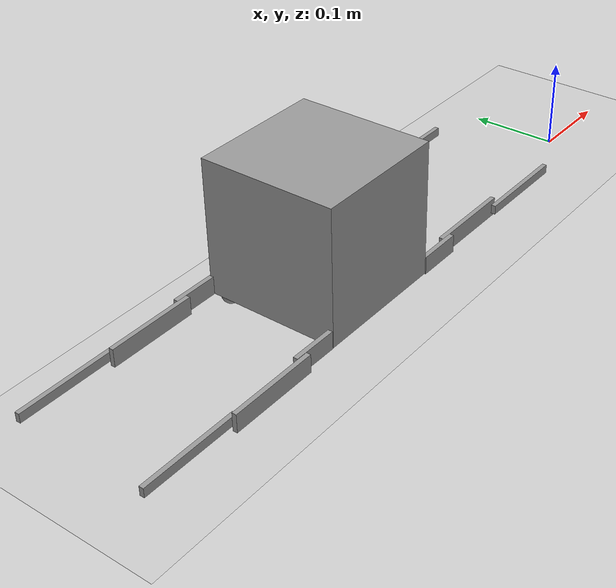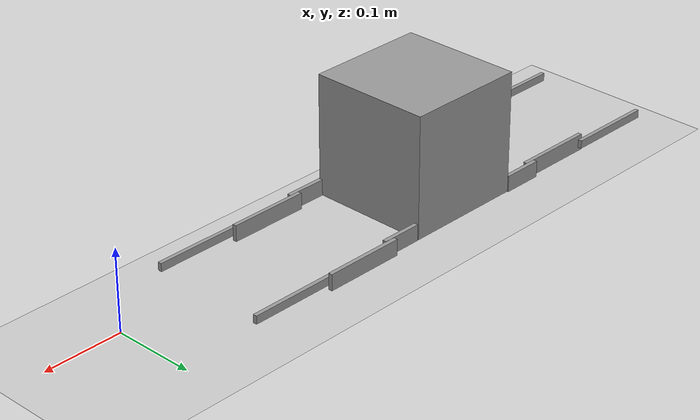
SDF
<?xml version="1.0" ?>
<sdf version="1.5">
  <world name="default">
    <!-- Ground -->
    <include>
      <uri>model://usr/share/gazebo-9/models/ground_plane</uri>
    </include>
    <!-- crawler -->
    <include>
      <uri>model:/model_editor_models/models/krabbler_v5</uri>
      <pose>0 0 0 0 0 0</pose>
    </include>
    <!-- A global light source -->
    <include>
      <uri>model://usr/share/gazebo-9/models/sun</uri>
    </include>
  </world>
</sdf>

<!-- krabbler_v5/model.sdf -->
<sdf version='1.6'>
  <model name='krabbler_v5'>
    <link name='link_0'>
      <inertial>
        <mass>0.8</mass>
        <inertia>
          <ixx>0.003</ixx>
          <ixy>0</ixy>
          <ixz>0</ixz>
          <iyy>0.003</iyy>
          <iyz>0</iyz>
          <izz>0.003</izz>
        </inertia>
        <pose frame=''>0 0 0 0 -0 0</pose>
      </inertial>
      <pose frame=''>-0.407839 0.031491 0.075422 0 -0 0</pose>
      <gravity>0</gravity>
      <self_collide>1</self_collide>
      <kinematic>0</kinematic>
      <enable_wind>0</enable_wind>
      <visual name='visual'>
        <pose frame=''>0 0 0.01 0 -0 0</pose>
        <geometry>
          <box>
            <size>0.15 0.15 0.15</size>
          </box>
        </geometry>
        <material>
          <lighting>1</lighting>
          <script>
            <uri>file://media/materials/scripts/gazebo.material</uri>
            <name>Gazebo/Grey</name>
          </script>
          <shader type='vertex'>
            <normal_map>__default__</normal_map>
          </shader>
          <ambient>0.3 0.3 0.3 1</ambient>
          <diffuse>0.7 0.7 0.7 1</diffuse>
          <specular>0.01 0.01 0.01 1</specular>
          <emissive>0 0 0 1</emissive>
        </material>
        <transparency>0</transparency>
        <cast_shadows>1</cast_shadows>
      </visual>
      <collision name='collision'>
        <laser_retro>0</laser_retro>
        <max_contacts>10</max_contacts>
        <pose frame=''>0 0 0.01 0 -0 0</pose>
        <geometry>
          <box>
            <size>0.15 0.15 0.15</size>
          </box>
        </geometry>
        <surface>
          <friction>
            <ode>
              <mu>1</mu>
              <mu2>1</mu2>
              <fdir1>0 0 0</fdir1>
              <slip1>0</slip1>
              <slip2>0</slip2>
            </ode>
            <torsional>
              <coefficient>1</coefficient>
              <patch_radius>0</patch_radius>
              <surface_radius>0</surface_radius>
              <use_patch_radius>1</use_patch_radius>
              <ode>
                <slip>0</slip>
              </ode>
            </torsional>
          </friction>
          <bounce>
            <restitution_coefficient>0</restitution_coefficient>
            <threshold>1e+06</threshold>
          </bounce>
          <contact>
            <collide_without_contact>0</collide_without_contact>
            <collide_without_contact_bitmask>1</collide_without_contact_bitmask>
            <collide_bitmask>1</collide_bitmask>
            <ode>
              <soft_cfm>0</soft_cfm>
              <soft_erp>0.2</soft_erp>
              <kp>1e+13</kp>
              <kd>1</kd>
              <max_vel>0.01</max_vel>
              <min_depth>0</min_depth>
            </ode>
            <bullet>
              <split_impulse>1</split_impulse>
              <split_impulse_penetration_threshold>-0.01</split_impulse_penetration_threshold>
              <soft_cfm>0</soft_cfm>
              <soft_erp>0.2</soft_erp>
              <kp>1e+13</kp>
              <kd>1</kd>
            </bullet>
          </contact>
        </surface>
      </collision>
    </link>
    <link name='link_0_0'>
      <inertial>
        <mass>0.009615</mass>
        <inertia>
          <ixx>3.4e-07</ixx>
          <ixy>0</ixy>
          <ixz>0</ixz>
          <iyy>2.32e-06</iyy>
          <iyz>0</iyz>
          <izz>2.02e-06</izz>
        </inertia>
        <pose frame=''>0 0 0 0 -0 0</pose>
      </inertial>
      <pose frame=''>-0.508773 -0.040815 0.02 2.8e-05 -2.8e-05 -0.007534</pose>
      <gravity>1</gravity>
      <self_collide>0</self_collide>
      <kinematic>0</kinematic>
      <enable_wind>0</enable_wind>
      <visual name='visual'>
        <pose frame=''>0 0 0 0 -0 0</pose>
        <geometry>
          <box>
            <size>0.05 0.005 0.02</size>
          </box>
        </geometry>
        <material>
          <lighting>1</lighting>
          <script>
            <uri>file://media/materials/scripts/gazebo.material</uri>
            <name>Gazebo/Grey</name>
          </script>
          <shader type='vertex'>
            <normal_map>__default__</normal_map>
          </shader>
          <ambient>0.3 0.3 0.3 1</ambient>
          <diffuse>0.7 0.7 0.7 1</diffuse>
          <specular>0.01 0.01 0.01 1</specular>
          <emissive>0 0 0 1</emissive>
        </material>
        <transparency>0</transparency>
        <cast_shadows>1</cast_shadows>
      </visual>
      <collision name='collision'>
        <laser_retro>0</laser_retro>
        <max_contacts>10</max_contacts>
        <pose frame=''>0 0 0 0 -0 0</pose>
        <geometry>
          <box>
            <size>0.05 0.005 0.02</size>
          </box>
        </geometry>
        <surface>
          <friction>
            <ode>
              <mu>1</mu>
              <mu2>1</mu2>
              <fdir1>0 0 0</fdir1>
              <slip1>0</slip1>
              <slip2>0</slip2>
            </ode>
            <torsional>
              <coefficient>1</coefficient>
              <patch_radius>0</patch_radius>
              <surface_radius>0</surface_radius>
              <use_patch_radius>1</use_patch_radius>
              <ode>
                <slip>0</slip>
              </ode>
            </torsional>
          </friction>
          <bounce>
            <restitution_coefficient>0</restitution_coefficient>
            <threshold>1e+06</threshold>
          </bounce>
          <contact>
            <collide_without_contact>0</collide_without_contact>
            <collide_without_contact_bitmask>1</collide_without_contact_bitmask>
            <collide_bitmask>1</collide_bitmask>
            <ode>
              <soft_cfm>0</soft_cfm>
              <soft_erp>0.2</soft_erp>
              <kp>1e+13</kp>
              <kd>1</kd>
              <max_vel>0.01</max_vel>
              <min_depth>0</min_depth>
            </ode>
            <bullet>
              <split_impulse>1</split_impulse>
              <split_impulse_penetration_threshold>-0.01</split_impulse_penetration_threshold>
              <soft_cfm>0</soft_cfm>
              <soft_erp>0.2</soft_erp>
              <kp>1e+13</kp>
              <kd>1</kd>
            </bullet>
          </contact>
        </surface>
      </collision>
    </link>
    <link name='link_0_0_clone'>
      <inertial>
        <mass>0.009615</mass>
        <inertia>
          <ixx>3.4e-07</ixx>
          <ixy>0</ixy>
          <ixz>0</ixz>
          <iyy>2.32e-06</iyy>
          <iyz>0</iyz>
          <izz>2.02e-06</izz>
        </inertia>
        <pose frame=''>0 0 0 0 -0 0</pose>
      </inertial>
      <pose frame=''>-0.50793 0.105085 0.02 5.7e-05 -5.5e-05 3.14</pose>
      <gravity>0</gravity>
      <self_collide>0</self_collide>
      <kinematic>0</kinematic>
      <enable_wind>0</enable_wind>
      <visual name='visual_0'>
        <pose frame=''>0 0 0 0 -0 0</pose>
        <geometry>
          <box>
            <size>0.05 0.005 0.02</size>
          </box>
        </geometry>
        <material>
          <lighting>1</lighting>
          <script>
            <uri>file://media/materials/scripts/gazebo.material</uri>
            <name>Gazebo/Grey</name>
          </script>
          <shader type='vertex'>
            <normal_map>__default__</normal_map>
          </shader>
          <ambient>0.3 0.3 0.3 1</ambient>
          <diffuse>0.7 0.7 0.7 1</diffuse>
          <specular>0.01 0.01 0.01 1</specular>
          <emissive>0 0 0 1</emissive>
        </material>
        <transparency>0</transparency>
        <cast_shadows>1</cast_shadows>
      </visual>
      <collision name='collision'>
        <laser_retro>0</laser_retro>
        <max_contacts>10</max_contacts>
        <pose frame=''>0 0 0 0 -0 0</pose>
        <geometry>
          <box>
            <size>0.05 0.005 0.02</size>
          </box>
        </geometry>
        <surface>
          <friction>
            <ode>
              <mu>1</mu>
              <mu2>1</mu2>
              <fdir1>0 0 0</fdir1>
              <slip1>0</slip1>
              <slip2>0</slip2>
            </ode>
            <torsional>
              <coefficient>1</coefficient>
              <patch_radius>0</patch_radius>
              <surface_radius>0</surface_radius>
              <use_patch_radius>1</use_patch_radius>
              <ode>
                <slip>0</slip>
              </ode>
            </torsional>
          </friction>
          <bounce>
            <restitution_coefficient>0</restitution_coefficient>
            <threshold>1e+06</threshold>
          </bounce>
          <contact>
            <collide_without_contact>0</collide_without_contact>
            <collide_without_contact_bitmask>1</collide_without_contact_bitmask>
            <collide_bitmask>1</collide_bitmask>
            <ode>
              <soft_cfm>0</soft_cfm>
              <soft_erp>0.2</soft_erp>
              <kp>1e+13</kp>
              <kd>1</kd>
              <max_vel>0.01</max_vel>
              <min_depth>0</min_depth>
            </ode>
            <bullet>
              <split_impulse>1</split_impulse>
              <split_impulse_penetration_threshold>-0.01</split_impulse_penetration_threshold>
              <soft_cfm>0</soft_cfm>
              <soft_erp>0.2</soft_erp>
              <kp>1e+13</kp>
              <kd>1</kd>
            </bullet>
          </contact>
        </surface>
      </collision>
    </link>
    <link name='link_0_0_clone_0'>
      <inertial>
        <mass>0.009615</mass>
        <inertia>
          <ixx>3.4e-07</ixx>
          <ixy>0</ixy>
          <ixz>0</ixz>
          <iyy>2.32e-06</iyy>
          <iyz>0</iyz>
          <izz>2.02e-06</izz>
        </inertia>
        <pose frame=''>0 0 0 0 -0 0</pose>
      </inertial>
      <pose frame=''>-0.307807 -0.042039 0.02 0 -0 0</pose>
      <gravity>0</gravity>
      <self_collide>0</self_collide>
      <kinematic>0</kinematic>
      <enable_wind>0</enable_wind>
      <visual name='visual_0'>
        <pose frame=''>0 0 0 0 -0 0</pose>
        <geometry>
          <box>
            <size>0.05 0.005 0.02</size>
          </box>
        </geometry>
        <material>
          <lighting>1</lighting>
          <script>
            <uri>file://media/materials/scripts/gazebo.material</uri>
            <name>Gazebo/Grey</name>
          </script>
          <shader type='vertex'>
            <normal_map>__default__</normal_map>
          </shader>
          <ambient>0.3 0.3 0.3 1</ambient>
          <diffuse>0.7 0.7 0.7 1</diffuse>
          <specular>0.01 0.01 0.01 1</specular>
          <emissive>0 0 0 1</emissive>
        </material>
        <transparency>0</transparency>
        <cast_shadows>1</cast_shadows>
      </visual>
      <collision name='collision'>
        <laser_retro>0</laser_retro>
        <max_contacts>10</max_contacts>
        <pose frame=''>0 0 0 0 -0 0</pose>
        <geometry>
          <box>
            <size>0.05 0.005 0.02</size>
          </box>
        </geometry>
        <surface>
          <friction>
            <ode>
              <mu>1</mu>
              <mu2>1</mu2>
              <fdir1>0 0 0</fdir1>
              <slip1>0</slip1>
              <slip2>0</slip2>
            </ode>
            <torsional>
              <coefficient>1</coefficient>
              <patch_radius>0</patch_radius>
              <surface_radius>0</surface_radius>
              <use_patch_radius>1</use_patch_radius>
              <ode>
                <slip>0</slip>
              </ode>
            </torsional>
          </friction>
          <bounce>
            <restitution_coefficient>0</restitution_coefficient>
            <threshold>1e+06</threshold>
          </bounce>
          <contact>
            <collide_without_contact>0</collide_without_contact>
            <collide_without_contact_bitmask>1</collide_without_contact_bitmask>
            <collide_bitmask>1</collide_bitmask>
            <ode>
              <soft_cfm>0</soft_cfm>
              <soft_erp>0.2</soft_erp>
              <kp>1e+13</kp>
              <kd>1</kd>
              <max_vel>0.01</max_vel>
              <min_depth>0</min_depth>
            </ode>
            <bullet>
              <split_impulse>1</split_impulse>
              <split_impulse_penetration_threshold>-0.01</split_impulse_penetration_threshold>
              <soft_cfm>0</soft_cfm>
              <soft_erp>0.2</soft_erp>
              <kp>1e+13</kp>
              <kd>1</kd>
            </bullet>
          </contact>
        </surface>
      </collision>
    </link>
    <link name='link_0_0_clone_1'>
      <inertial>
        <mass>0.009615</mass>
        <inertia>
          <ixx>3.4e-07</ixx>
          <ixy>0</ixy>
          <ixz>0</ixz>
          <iyy>2.32e-06</iyy>
          <iyz>0</iyz>
          <izz>2.02e-06</izz>
        </inertia>
        <pose frame=''>0 0 0 0 -0 0</pose>
      </inertial>
      <pose frame=''>-0.30679 0.103671 0.02 5.7e-05 -5.5e-05 3.14</pose>
      <gravity>1</gravity>
      <self_collide>0</self_collide>
      <kinematic>0</kinematic>
      <enable_wind>0</enable_wind>
      <visual name='visual_0'>
        <pose frame=''>0 0 0 0 -0 0</pose>
        <geometry>
          <box>
            <size>0.05 0.005 0.02</size>
          </box>
        </geometry>
        <material>
          <lighting>1</lighting>
          <script>
            <uri>file://media/materials/scripts/gazebo.material</uri>
            <name>Gazebo/Grey</name>
          </script>
          <shader type='vertex'>
            <normal_map>__default__</normal_map>
          </shader>
          <ambient>0.3 0.3 0.3 1</ambient>
          <diffuse>0.7 0.7 0.7 1</diffuse>
          <specular>0.01 0.01 0.01 1</specular>
          <emissive>0 0 0 1</emissive>
        </material>
        <transparency>0</transparency>
        <cast_shadows>1</cast_shadows>
      </visual>
      <collision name='collision'>
        <laser_retro>0</laser_retro>
        <max_contacts>10</max_contacts>
        <pose frame=''>0 0 0 0 -0 0</pose>
        <geometry>
          <box>
            <size>0.05 0.005 0.02</size>
          </box>
        </geometry>
        <surface>
          <friction>
            <ode>
              <mu>1</mu>
              <mu2>1</mu2>
              <fdir1>0 0 0</fdir1>
              <slip1>0</slip1>
              <slip2>0</slip2>
            </ode>
            <torsional>
              <coefficient>1</coefficient>
              <patch_radius>0</patch_radius>
              <surface_radius>0</surface_radius>
              <use_patch_radius>1</use_patch_radius>
              <ode>
                <slip>0</slip>
              </ode>
            </torsional>
          </friction>
          <bounce>
            <restitution_coefficient>0</restitution_coefficient>
            <threshold>1e+06</threshold>
          </bounce>
          <contact>
            <collide_without_contact>0</collide_without_contact>
            <collide_without_contact_bitmask>1</collide_without_contact_bitmask>
            <collide_bitmask>1</collide_bitmask>
            <ode>
              <soft_cfm>0</soft_cfm>
              <soft_erp>0.2</soft_erp>
              <kp>1e+13</kp>
              <kd>1</kd>
              <max_vel>0.01</max_vel>
              <min_depth>0</min_depth>
            </ode>
            <bullet>
              <split_impulse>1</split_impulse>
              <split_impulse_penetration_threshold>-0.01</split_impulse_penetration_threshold>
              <soft_cfm>0</soft_cfm>
              <soft_erp>0.2</soft_erp>
              <kp>1e+13</kp>
              <kd>1</kd>
            </bullet>
          </contact>
        </surface>
      </collision>
    </link>
    <link name='link_0_1'>
      <inertial>
        <mass>0.01923</mass>
        <inertia>
          <ixx>6.8e-07</ixx>
          <ixy>0</ixy>
          <ixz>0</ixz>
          <iyy>1.667e-05</iyy>
          <iyz>0</iyz>
          <izz>1.607e-05</izz>
        </inertia>
        <pose frame=''>0 0 0 0 -0 0</pose>
      </inertial>
      <pose frame=''>-0.244807 -0.037186 0.02 0 -0 0</pose>
      <gravity>0</gravity>
      <self_collide>0</self_collide>
      <kinematic>0</kinematic>
      <enable_wind>0</enable_wind>
      <visual name='visual'>
        <pose frame=''>0 0 0 0 -0 0</pose>
        <geometry>
          <box>
            <size>0.1 0.005 0.02</size>
          </box>
        </geometry>
        <material>
          <lighting>1</lighting>
          <script>
            <uri>file://media/materials/scripts/gazebo.material</uri>
            <name>Gazebo/Grey</name>
          </script>
          <shader type='vertex'>
            <normal_map>__default__</normal_map>
          </shader>
          <ambient>0.3 0.3 0.3 1</ambient>
          <diffuse>0.7 0.7 0.7 1</diffuse>
          <specular>0.01 0.01 0.01 1</specular>
          <emissive>0 0 0 1</emissive>
        </material>
        <transparency>0</transparency>
        <cast_shadows>1</cast_shadows>
      </visual>
      <collision name='collision'>
        <laser_retro>0</laser_retro>
        <max_contacts>10</max_contacts>
        <pose frame=''>0 0 0 0 -0 0</pose>
        <geometry>
          <box>
            <size>0.1 0.005 0.02</size>
          </box>
        </geometry>
        <surface>
          <friction>
            <ode>
              <mu>1</mu>
              <mu2>1</mu2>
              <fdir1>0 0 0</fdir1>
              <slip1>0</slip1>
              <slip2>0</slip2>
            </ode>
            <torsional>
              <coefficient>1</coefficient>
              <patch_radius>0</patch_radius>
              <surface_radius>0</surface_radius>
              <use_patch_radius>1</use_patch_radius>
              <ode>
                <slip>0</slip>
              </ode>
            </torsional>
          </friction>
          <bounce>
            <restitution_coefficient>0</restitution_coefficient>
            <threshold>1e+06</threshold>
          </bounce>
          <contact>
            <collide_without_contact>0</collide_without_contact>
            <collide_without_contact_bitmask>1</collide_without_contact_bitmask>
            <collide_bitmask>1</collide_bitmask>
            <ode>
              <soft_cfm>0</soft_cfm>
              <soft_erp>0.2</soft_erp>
              <kp>1e+13</kp>
              <kd>1</kd>
              <max_vel>0.01</max_vel>
              <min_depth>0</min_depth>
            </ode>
            <bullet>
              <split_impulse>1</split_impulse>
              <split_impulse_penetration_threshold>-0.01</split_impulse_penetration_threshold>
              <soft_cfm>0</soft_cfm>
              <soft_erp>0.2</soft_erp>
              <kp>1e+13</kp>
              <kd>1</kd>
            </bullet>
          </contact>
        </surface>
      </collision>
    </link>
    <link name='link_0_1_clone'>
      <inertial>
        <mass>0.01923</mass>
        <inertia>
          <ixx>6.8e-07</ixx>
          <ixy>0</ixy>
          <ixz>0</ixz>
          <iyy>1.667e-05</iyy>
          <iyz>0</iyz>
          <izz>1.607e-05</izz>
        </inertia>
        <pose frame=''>0 0 0 0 -0 0</pose>
      </inertial>
      <pose frame=''>-0.570957 0.100419 0.02 0 -0 3.14</pose>
      <gravity>0</gravity>
      <self_collide>0</self_collide>
      <kinematic>0</kinematic>
      <enable_wind>0</enable_wind>
      <visual name='visual_0'>
        <pose frame=''>0 0 0 0 -0 0</pose>
        <geometry>
          <box>
            <size>0.1 0.005 0.02</size>
          </box>
        </geometry>
        <material>
          <lighting>1</lighting>
          <script>
            <uri>file://media/materials/scripts/gazebo.material</uri>
            <name>Gazebo/Grey</name>
          </script>
          <shader type='vertex'>
            <normal_map>__default__</normal_map>
          </shader>
          <ambient>0.3 0.3 0.3 1</ambient>
          <diffuse>0.7 0.7 0.7 1</diffuse>
          <specular>0.01 0.01 0.01 1</specular>
          <emissive>0 0 0 1</emissive>
        </material>
        <transparency>0</transparency>
        <cast_shadows>1</cast_shadows>
      </visual>
      <collision name='collision'>
        <laser_retro>0</laser_retro>
        <max_contacts>10</max_contacts>
        <pose frame=''>0 0 0 0 -0 0</pose>
        <geometry>
          <box>
            <size>0.1 0.005 0.02</size>
          </box>
        </geometry>
        <surface>
          <friction>
            <ode>
              <mu>1</mu>
              <mu2>1</mu2>
              <fdir1>0 0 0</fdir1>
              <slip1>0</slip1>
              <slip2>0</slip2>
            </ode>
            <torsional>
              <coefficient>1</coefficient>
              <patch_radius>0</patch_radius>
              <surface_radius>0</surface_radius>
              <use_patch_radius>1</use_patch_radius>
              <ode>
                <slip>0</slip>
              </ode>
            </torsional>
          </friction>
          <bounce>
            <restitution_coefficient>0</restitution_coefficient>
            <threshold>1e+06</threshold>
          </bounce>
          <contact>
            <collide_without_contact>0</collide_without_contact>
            <collide_without_contact_bitmask>1</collide_without_contact_bitmask>
            <collide_bitmask>1</collide_bitmask>
            <ode>
              <soft_cfm>0</soft_cfm>
              <soft_erp>0.2</soft_erp>
              <kp>1e+13</kp>
              <kd>1</kd>
              <max_vel>0.01</max_vel>
              <min_depth>0</min_depth>
            </ode>
            <bullet>
              <split_impulse>1</split_impulse>
              <split_impulse_penetration_threshold>-0.01</split_impulse_penetration_threshold>
              <soft_cfm>0</soft_cfm>
              <soft_erp>0.2</soft_erp>
              <kp>1e+13</kp>
              <kd>1</kd>
            </bullet>
          </contact>
        </surface>
      </collision>
    </link>
    <link name='link_0_1_clone_0'>
      <inertial>
        <mass>0.01923</mass>
        <inertia>
          <ixx>6.8e-07</ixx>
          <ixy>0</ixy>
          <ixz>0</ixz>
          <iyy>1.667e-05</iyy>
          <iyz>0</iyz>
          <izz>1.607e-05</izz>
        </inertia>
        <pose frame=''>0 0 0 0 -0 0</pose>
      </inertial>
      <pose frame=''>-0.571792 -0.046004 0.02 0 -0 0</pose>
      <gravity>0</gravity>
      <self_collide>0</self_collide>
      <kinematic>0</kinematic>
      <enable_wind>0</enable_wind>
      <visual name='visual_0'>
        <pose frame=''>0 0 0 0 -0 0</pose>
        <geometry>
          <box>
            <size>0.1 0.005 0.02</size>
          </box>
        </geometry>
        <material>
          <lighting>1</lighting>
          <script>
            <uri>file://media/materials/scripts/gazebo.material</uri>
            <name>Gazebo/Grey</name>
          </script>
          <shader type='vertex'>
            <normal_map>__default__</normal_map>
          </shader>
          <ambient>0.3 0.3 0.3 1</ambient>
          <diffuse>0.7 0.7 0.7 1</diffuse>
          <specular>0.01 0.01 0.01 1</specular>
          <emissive>0 0 0 1</emissive>
        </material>
        <transparency>0</transparency>
        <cast_shadows>1</cast_shadows>
      </visual>
      <collision name='collision'>
        <laser_retro>0</laser_retro>
        <max_contacts>10</max_contacts>
        <pose frame=''>0 0 0 0 -0 0</pose>
        <geometry>
          <box>
            <size>0.1 0.005 0.02</size>
          </box>
        </geometry>
        <surface>
          <friction>
            <ode>
              <mu>1</mu>
              <mu2>1</mu2>
              <fdir1>0 0 0</fdir1>
              <slip1>0</slip1>
              <slip2>0</slip2>
            </ode>
            <torsional>
              <coefficient>1</coefficient>
              <patch_radius>0</patch_radius>
              <surface_radius>0</surface_radius>
              <use_patch_radius>1</use_patch_radius>
              <ode>
                <slip>0</slip>
              </ode>
            </torsional>
          </friction>
          <bounce>
            <restitution_coefficient>0</restitution_coefficient>
            <threshold>1e+06</threshold>
          </bounce>
          <contact>
            <collide_without_contact>0</collide_without_contact>
            <collide_without_contact_bitmask>1</collide_without_contact_bitmask>
            <collide_bitmask>1</collide_bitmask>
            <ode>
              <soft_cfm>0</soft_cfm>
              <soft_erp>0.2</soft_erp>
              <kp>1e+13</kp>
              <kd>1</kd>
              <max_vel>0.01</max_vel>
              <min_depth>0</min_depth>
            </ode>
            <bullet>
              <split_impulse>1</split_impulse>
              <split_impulse_penetration_threshold>-0.01</split_impulse_penetration_threshold>
              <soft_cfm>0</soft_cfm>
              <soft_erp>0.2</soft_erp>
              <kp>1e+13</kp>
              <kd>1</kd>
            </bullet>
          </contact>
        </surface>
      </collision>
    </link>
    <link name='link_0_1_clone_1'>
      <inertial>
        <mass>0.01923</mass>
        <inertia>
          <ixx>6.8e-07</ixx>
          <ixy>0</ixy>
          <ixz>0</ixz>
          <iyy>1.667e-05</iyy>
          <iyz>0</iyz>
          <izz>1.607e-05</izz>
        </inertia>
        <pose frame=''>0 0 0 0 -0 0</pose>
      </inertial>
      <pose frame=''>-0.243763 0.108818 0.02 0 -0 3.14</pose>
      <gravity>0</gravity>
      <self_collide>0</self_collide>
      <kinematic>0</kinematic>
      <enable_wind>0</enable_wind>
      <visual name='visual_0'>
        <pose frame=''>0 0 0 0 -0 0</pose>
        <geometry>
          <box>
            <size>0.1 0.005 0.02</size>
          </box>
        </geometry>
        <material>
          <lighting>1</lighting>
          <script>
            <uri>file://media/materials/scripts/gazebo.material</uri>
            <name>Gazebo/Grey</name>
          </script>
          <shader type='vertex'>
            <normal_map>__default__</normal_map>
          </shader>
          <ambient>0.3 0.3 0.3 1</ambient>
          <diffuse>0.7 0.7 0.7 1</diffuse>
          <specular>0.01 0.01 0.01 1</specular>
          <emissive>0 0 0 1</emissive>
        </material>
        <transparency>0</transparency>
        <cast_shadows>1</cast_shadows>
      </visual>
      <collision name='collision'>
        <laser_retro>0</laser_retro>
        <max_contacts>10</max_contacts>
        <pose frame=''>0 0 0 0 -0 0</pose>
        <geometry>
          <box>
            <size>0.1 0.005 0.02</size>
          </box>
        </geometry>
        <surface>
          <friction>
            <ode>
              <mu>1</mu>
              <mu2>1</mu2>
              <fdir1>0 0 0</fdir1>
              <slip1>0</slip1>
              <slip2>0</slip2>
            </ode>
            <torsional>
              <coefficient>1</coefficient>
              <patch_radius>0</patch_radius>
              <surface_radius>0</surface_radius>
              <use_patch_radius>1</use_patch_radius>
              <ode>
                <slip>0</slip>
              </ode>
            </torsional>
          </friction>
          <bounce>
            <restitution_coefficient>0</restitution_coefficient>
            <threshold>1e+06</threshold>
          </bounce>
          <contact>
            <collide_without_contact>0</collide_without_contact>
            <collide_without_contact_bitmask>1</collide_without_contact_bitmask>
            <collide_bitmask>1</collide_bitmask>
            <ode>
              <soft_cfm>0</soft_cfm>
              <soft_erp>0.2</soft_erp>
              <kp>1e+13</kp>
              <kd>1</kd>
              <max_vel>0.01</max_vel>
              <min_depth>0</min_depth>
            </ode>
            <bullet>
              <split_impulse>1</split_impulse>
              <split_impulse_penetration_threshold>-0.01</split_impulse_penetration_threshold>
              <soft_cfm>0</soft_cfm>
              <soft_erp>0.2</soft_erp>
              <kp>1e+13</kp>
              <kd>1</kd>
            </bullet>
          </contact>
        </surface>
      </collision>
    </link>
    <link name='link_0_2'>
      <inertial>
        <mass>0.021153</mass>
        <inertia>
          <ixx>2.2e-07</ixx>
          <ixy>0</ixy>
          <ixz>0</ixz>
          <iyy>2.151e-05</iyy>
          <iyz>0</iyz>
          <izz>2.137e-05</izz>
        </inertia>
        <pose frame=''>0 0 0 0 -0 0</pose>
      </inertial>
      <pose frame=''>-0.146806 -0.042783 0.02 0 -0 0</pose>
      <gravity>0</gravity>
      <self_collide>0</self_collide>
      <kinematic>0</kinematic>
      <enable_wind>0</enable_wind>
      <visual name='visual'>
        <pose frame=''>0 0 0 0 -0 0</pose>
        <geometry>
          <box>
            <size>0.11 0.005 0.01</size>
          </box>
        </geometry>
        <material>
          <lighting>1</lighting>
          <script>
            <uri>file://media/materials/scripts/gazebo.material</uri>
            <name>Gazebo/Grey</name>
          </script>
          <shader type='vertex'>
            <normal_map>__default__</normal_map>
          </shader>
          <ambient>0.3 0.3 0.3 1</ambient>
          <diffuse>0.7 0.7 0.7 1</diffuse>
          <specular>0.01 0.01 0.01 1</specular>
          <emissive>0 0 0 1</emissive>
        </material>
        <transparency>0</transparency>
        <cast_shadows>1</cast_shadows>
      </visual>
      <collision name='collision'>
        <laser_retro>0</laser_retro>
        <max_contacts>10</max_contacts>
        <pose frame=''>0 0 0 0 -0 0</pose>
        <geometry>
          <box>
            <size>0.11 0.005 0.01</size>
          </box>
        </geometry>
        <surface>
          <friction>
            <ode>
              <mu>1</mu>
              <mu2>1</mu2>
              <fdir1>0 0 0</fdir1>
              <slip1>0</slip1>
              <slip2>0</slip2>
            </ode>
            <torsional>
              <coefficient>1</coefficient>
              <patch_radius>0</patch_radius>
              <surface_radius>0</surface_radius>
              <use_patch_radius>1</use_patch_radius>
              <ode>
                <slip>0</slip>
              </ode>
            </torsional>
          </friction>
          <bounce>
            <restitution_coefficient>0</restitution_coefficient>
            <threshold>1e+06</threshold>
          </bounce>
          <contact>
            <collide_without_contact>0</collide_without_contact>
            <collide_without_contact_bitmask>1</collide_without_contact_bitmask>
            <collide_bitmask>1</collide_bitmask>
            <ode>
              <soft_cfm>0</soft_cfm>
              <soft_erp>0.2</soft_erp>
              <kp>1e+13</kp>
              <kd>1</kd>
              <max_vel>0.01</max_vel>
              <min_depth>0</min_depth>
            </ode>
            <bullet>
              <split_impulse>1</split_impulse>
              <split_impulse_penetration_threshold>-0.01</split_impulse_penetration_threshold>
              <soft_cfm>0</soft_cfm>
              <soft_erp>0.2</soft_erp>
              <kp>1e+13</kp>
              <kd>1</kd>
            </bullet>
          </contact>
        </surface>
      </collision>
    </link>
    <link name='link_0_2_clone'>
      <inertial>
        <mass>0.021153</mass>
        <inertia>
          <ixx>2.2e-07</ixx>
          <ixy>0</ixy>
          <ixz>0</ixz>
          <iyy>2.151e-05</iyy>
          <iyz>0</iyz>
          <izz>2.137e-05</izz>
        </inertia>
        <pose frame=''>0 0 0 0 -0 0</pose>
      </inertial>
      <pose frame=''>-0.144759 0.103808 0.02 0 -0 3.14</pose>
      <gravity>0</gravity>
      <self_collide>0</self_collide>
      <kinematic>0</kinematic>
      <enable_wind>0</enable_wind>
      <visual name='visual'>
        <pose frame=''>0 0 0 0 -0 0</pose>
        <geometry>
          <box>
            <size>0.11 0.005 0.01</size>
          </box>
        </geometry>
        <material>
          <lighting>1</lighting>
          <script>
            <uri>file://media/materials/scripts/gazebo.material</uri>
            <name>Gazebo/Grey</name>
          </script>
          <shader type='vertex'>
            <normal_map>__default__</normal_map>
          </shader>
          <ambient>0.3 0.3 0.3 1</ambient>
          <diffuse>0.7 0.7 0.7 1</diffuse>
          <specular>0.01 0.01 0.01 1</specular>
          <emissive>0 0 0 1</emissive>
        </material>
        <transparency>0</transparency>
        <cast_shadows>1</cast_shadows>
      </visual>
      <collision name='collision'>
        <laser_retro>0</laser_retro>
        <max_contacts>10</max_contacts>
        <pose frame=''>0 0 0 0 -0 0</pose>
        <geometry>
          <box>
            <size>0.11 0.005 0.01</size>
          </box>
        </geometry>
        <surface>
          <friction>
            <ode>
              <mu>1</mu>
              <mu2>1</mu2>
              <fdir1>0 0 0</fdir1>
              <slip1>0</slip1>
              <slip2>0</slip2>
            </ode>
            <torsional>
              <coefficient>1</coefficient>
              <patch_radius>0</patch_radius>
              <surface_radius>0</surface_radius>
              <use_patch_radius>1</use_patch_radius>
              <ode>
                <slip>0</slip>
              </ode>
            </torsional>
          </friction>
          <bounce>
            <restitution_coefficient>0</restitution_coefficient>
            <threshold>1e+06</threshold>
          </bounce>
          <contact>
            <collide_without_contact>0</collide_without_contact>
            <collide_without_contact_bitmask>1</collide_without_contact_bitmask>
            <collide_bitmask>1</collide_bitmask>
            <ode>
              <soft_cfm>0</soft_cfm>
              <soft_erp>0.2</soft_erp>
              <kp>1e+13</kp>
              <kd>1</kd>
              <max_vel>0.01</max_vel>
              <min_depth>0</min_depth>
            </ode>
            <bullet>
              <split_impulse>1</split_impulse>
              <split_impulse_penetration_threshold>-0.01</split_impulse_penetration_threshold>
              <soft_cfm>0</soft_cfm>
              <soft_erp>0.2</soft_erp>
              <kp>1e+13</kp>
              <kd>1</kd>
            </bullet>
          </contact>
        </surface>
      </collision>
    </link>
    <link name='link_0_2_clone_0'>
      <inertial>
        <mass>0.021153</mass>
        <inertia>
          <ixx>2.2e-07</ixx>
          <ixy>0</ixy>
          <ixz>0</ixz>
          <iyy>2.151e-05</iyy>
          <iyz>0</iyz>
          <izz>2.137e-05</izz>
        </inertia>
        <pose frame=''>0 0 0 0 -0 0</pose>
      </inertial>
      <pose frame=''>-0.670793 -0.040999 0.02 0 -0 0</pose>
      <gravity>0</gravity>
      <self_collide>0</self_collide>
      <kinematic>0</kinematic>
      <enable_wind>0</enable_wind>
      <visual name='visual'>
        <pose frame=''>0 0 0 0 -0 0</pose>
        <geometry>
          <box>
            <size>0.11 0.005 0.01</size>
          </box>
        </geometry>
        <material>
          <lighting>1</lighting>
          <script>
            <uri>file://media/materials/scripts/gazebo.material</uri>
            <name>Gazebo/Grey</name>
          </script>
          <shader type='vertex'>
            <normal_map>__default__</normal_map>
          </shader>
          <ambient>0.3 0.3 0.3 1</ambient>
          <diffuse>0.7 0.7 0.7 1</diffuse>
          <specular>0.01 0.01 0.01 1</specular>
          <emissive>0 0 0 1</emissive>
        </material>
        <transparency>0</transparency>
        <cast_shadows>1</cast_shadows>
      </visual>
      <collision name='collision'>
        <laser_retro>0</laser_retro>
        <max_contacts>10</max_contacts>
        <pose frame=''>0 0 0 0 -0 0</pose>
        <geometry>
          <box>
            <size>0.11 0.005 0.01</size>
          </box>
        </geometry>
        <surface>
          <friction>
            <ode>
              <mu>1</mu>
              <mu2>1</mu2>
              <fdir1>0 0 0</fdir1>
              <slip1>0</slip1>
              <slip2>0</slip2>
            </ode>
            <torsional>
              <coefficient>1</coefficient>
              <patch_radius>0</patch_radius>
              <surface_radius>0</surface_radius>
              <use_patch_radius>1</use_patch_radius>
              <ode>
                <slip>0</slip>
              </ode>
            </torsional>
          </friction>
          <bounce>
            <restitution_coefficient>0</restitution_coefficient>
            <threshold>1e+06</threshold>
          </bounce>
          <contact>
            <collide_without_contact>0</collide_without_contact>
            <collide_without_contact_bitmask>1</collide_without_contact_bitmask>
            <collide_bitmask>1</collide_bitmask>
            <ode>
              <soft_cfm>0</soft_cfm>
              <soft_erp>0.2</soft_erp>
              <kp>1e+13</kp>
              <kd>1</kd>
              <max_vel>0.01</max_vel>
              <min_depth>0</min_depth>
            </ode>
            <bullet>
              <split_impulse>1</split_impulse>
              <split_impulse_penetration_threshold>-0.01</split_impulse_penetration_threshold>
              <soft_cfm>0</soft_cfm>
              <soft_erp>0.2</soft_erp>
              <kp>1e+13</kp>
              <kd>1</kd>
            </bullet>
          </contact>
        </surface>
      </collision>
    </link>
    <link name='link_0_2_clone_0_clone'>
      <inertial>
        <mass>0.021153</mass>
        <inertia>
          <ixx>2.2e-07</ixx>
          <ixy>0</ixy>
          <ixz>0</ixz>
          <iyy>2.151e-05</iyy>
          <iyz>0</iyz>
          <izz>2.137e-05</izz>
        </inertia>
        <pose frame=''>0 0 0 0 -0 0</pose>
      </inertial>
      <pose frame=''>-0.66998 0.1055 0.019999 1e-06 -2e-06 -2e-05</pose>
      <gravity>0</gravity>
      <self_collide>0</self_collide>
      <kinematic>0</kinematic>
      <enable_wind>0</enable_wind>
      <visual name='visual'>
        <pose frame=''>0 0 0 0 -0 0</pose>
        <geometry>
          <box>
            <size>0.11 0.005 0.01</size>
          </box>
        </geometry>
        <material>
          <lighting>1</lighting>
          <script>
            <uri>file://media/materials/scripts/gazebo.material</uri>
            <name>Gazebo/Grey</name>
          </script>
          <shader type='vertex'>
            <normal_map>__default__</normal_map>
          </shader>
          <ambient>0.3 0.3 0.3 1</ambient>
          <diffuse>0.7 0.7 0.7 1</diffuse>
          <specular>0.01 0.01 0.01 1</specular>
          <emissive>0 0 0 1</emissive>
        </material>
        <transparency>0</transparency>
        <cast_shadows>1</cast_shadows>
      </visual>
      <collision name='collision'>
        <laser_retro>0</laser_retro>
        <max_contacts>10</max_contacts>
        <pose frame=''>0 0 0 0 -0 0</pose>
        <geometry>
          <box>
            <size>0.11 0.005 0.01</size>
          </box>
        </geometry>
        <surface>
          <friction>
            <ode>
              <mu>1</mu>
              <mu2>1</mu2>
              <fdir1>0 0 0</fdir1>
              <slip1>0</slip1>
              <slip2>0</slip2>
            </ode>
            <torsional>
              <coefficient>1</coefficient>
              <patch_radius>0</patch_radius>
              <surface_radius>0</surface_radius>
              <use_patch_radius>1</use_patch_radius>
              <ode>
                <slip>0</slip>
              </ode>
            </torsional>
          </friction>
          <bounce>
            <restitution_coefficient>0</restitution_coefficient>
            <threshold>1e+06</threshold>
          </bounce>
          <contact>
            <collide_without_contact>0</collide_without_contact>
            <collide_without_contact_bitmask>1</collide_without_contact_bitmask>
            <collide_bitmask>1</collide_bitmask>
            <ode>
              <soft_cfm>0</soft_cfm>
              <soft_erp>0.2</soft_erp>
              <kp>1e+13</kp>
              <kd>1</kd>
              <max_vel>0.01</max_vel>
              <min_depth>0</min_depth>
            </ode>
            <bullet>
              <split_impulse>1</split_impulse>
              <split_impulse_penetration_threshold>-0.01</split_impulse_penetration_threshold>
              <soft_cfm>0</soft_cfm>
              <soft_erp>0.2</soft_erp>
              <kp>1e+13</kp>
              <kd>1</kd>
            </bullet>
          </contact>
        </surface>
      </collision>
    </link>
    <link name='link_1'>
      <inertial>
        <mass>0.0125</mass>
        <inertia>
          <ixx>5e-07</ixx>
          <ixy>0</ixy>
          <ixz>0</ixz>
          <iyy>5e-07</iyy>
          <iyz>0</iyz>
          <izz>5e-07</izz>
        </inertia>
        <pose frame=''>0 0 0 0 -0 0</pose>
      </inertial>
      <pose frame=''>-0.472841 0.09 0 0 -0 0</pose>
      <gravity>1</gravity>
      <self_collide>0</self_collide>
      <kinematic>0</kinematic>
      <enable_wind>0</enable_wind>
      <visual name='visual'>
        <pose frame=''>0 0 0.01 0 -0 0</pose>
        <geometry>
          <sphere>
            <radius>0.01</radius>
          </sphere>
        </geometry>
        <material>
          <lighting>1</lighting>
          <script>
            <uri>file://media/materials/scripts/gazebo.material</uri>
            <name>Gazebo/Grey</name>
          </script>
          <shader type='vertex'>
            <normal_map>__default__</normal_map>
          </shader>
          <ambient>0.3 0.3 0.3 1</ambient>
          <diffuse>0.7 0.7 0.7 1</diffuse>
          <specular>0.01 0.01 0.01 1</specular>
          <emissive>0 0 0 1</emissive>
        </material>
        <transparency>0</transparency>
        <cast_shadows>1</cast_shadows>
      </visual>
      <collision name='collision'>
        <laser_retro>0</laser_retro>
        <max_contacts>10</max_contacts>
        <pose frame=''>0 0 0.01 0 -0 0</pose>
        <geometry>
          <sphere>
            <radius>0.01</radius>
          </sphere>
        </geometry>
        <surface>
          <friction>
            <ode>
              <mu>1</mu>
              <mu2>1</mu2>
              <fdir1>0 0 0</fdir1>
              <slip1>0</slip1>
              <slip2>0</slip2>
            </ode>
            <torsional>
              <coefficient>1</coefficient>
              <patch_radius>0</patch_radius>
              <surface_radius>0</surface_radius>
              <use_patch_radius>1</use_patch_radius>
              <ode>
                <slip>0</slip>
              </ode>
            </torsional>
          </friction>
          <bounce>
            <restitution_coefficient>0</restitution_coefficient>
            <threshold>1e+06</threshold>
          </bounce>
          <contact>
            <collide_without_contact>0</collide_without_contact>
            <collide_without_contact_bitmask>1</collide_without_contact_bitmask>
            <collide_bitmask>1</collide_bitmask>
            <ode>
              <soft_cfm>0</soft_cfm>
              <soft_erp>0.2</soft_erp>
              <kp>1e+13</kp>
              <kd>1</kd>
              <max_vel>0.01</max_vel>
              <min_depth>0</min_depth>
            </ode>
            <bullet>
              <split_impulse>1</split_impulse>
              <split_impulse_penetration_threshold>-0.01</split_impulse_penetration_threshold>
              <soft_cfm>0</soft_cfm>
              <soft_erp>0.2</soft_erp>
              <kp>1e+13</kp>
              <kd>1</kd>
            </bullet>
          </contact>
        </surface>
      </collision>
    </link>
    <link name='link_1_clone'>
      <inertial>
        <mass>0.0125</mass>
        <inertia>
          <ixx>5e-07</ixx>
          <ixy>0</ixy>
          <ixz>0</ixz>
          <iyy>5e-07</iyy>
          <iyz>0</iyz>
          <izz>5e-07</izz>
        </inertia>
        <pose frame=''>0 0 0 0 -0 0</pose>
      </inertial>
      <pose frame=''>-0.35 -0.03 0 0 -0 0</pose>
      <gravity>1</gravity>
      <self_collide>0</self_collide>
      <kinematic>0</kinematic>
      <enable_wind>0</enable_wind>
      <visual name='visual'>
        <pose frame=''>0 0 0.01 0 -0 0</pose>
        <geometry>
          <sphere>
            <radius>0.01</radius>
          </sphere>
        </geometry>
        <material>
          <lighting>1</lighting>
          <script>
            <uri>file://media/materials/scripts/gazebo.material</uri>
            <name>Gazebo/Grey</name>
          </script>
          <shader type='vertex'>
            <normal_map>__default__</normal_map>
          </shader>
          <ambient>0.3 0.3 0.3 1</ambient>
          <diffuse>0.7 0.7 0.7 1</diffuse>
          <specular>0.01 0.01 0.01 1</specular>
          <emissive>0 0 0 1</emissive>
        </material>
        <transparency>0</transparency>
        <cast_shadows>1</cast_shadows>
      </visual>
      <collision name='collision'>
        <laser_retro>0</laser_retro>
        <max_contacts>10</max_contacts>
        <pose frame=''>0 0 0.01 0 -0 0</pose>
        <geometry>
          <sphere>
            <radius>0.01</radius>
          </sphere>
        </geometry>
        <surface>
          <friction>
            <ode>
              <mu>1</mu>
              <mu2>1</mu2>
              <fdir1>0 0 0</fdir1>
              <slip1>0</slip1>
              <slip2>0</slip2>
            </ode>
            <torsional>
              <coefficient>1</coefficient>
              <patch_radius>0</patch_radius>
              <surface_radius>0</surface_radius>
              <use_patch_radius>1</use_patch_radius>
              <ode>
                <slip>0</slip>
              </ode>
            </torsional>
          </friction>
          <bounce>
            <restitution_coefficient>0</restitution_coefficient>
            <threshold>1e+06</threshold>
          </bounce>
          <contact>
            <collide_without_contact>0</collide_without_contact>
            <collide_without_contact_bitmask>1</collide_without_contact_bitmask>
            <collide_bitmask>1</collide_bitmask>
            <ode>
              <soft_cfm>0</soft_cfm>
              <soft_erp>0.2</soft_erp>
              <kp>1e+13</kp>
              <kd>1</kd>
              <max_vel>0.01</max_vel>
              <min_depth>0</min_depth>
            </ode>
            <bullet>
              <split_impulse>1</split_impulse>
              <split_impulse_penetration_threshold>-0.01</split_impulse_penetration_threshold>
              <soft_cfm>0</soft_cfm>
              <soft_erp>0.2</soft_erp>
              <kp>1e+13</kp>
              <kd>1</kd>
            </bullet>
          </contact>
        </surface>
      </collision>
    </link>
    <link name='link_1_clone_0'>
      <inertial>
        <mass>0.0125</mass>
        <inertia>
          <ixx>5e-07</ixx>
          <ixy>0</ixy>
          <ixz>0</ixz>
          <iyy>5e-07</iyy>
          <iyz>0</iyz>
          <izz>5e-07</izz>
        </inertia>
        <pose frame=''>0 0 0 0 -0 0</pose>
      </inertial>
      <pose frame=''>-0.35 0.09 0 0 -0 0</pose>
      <gravity>1</gravity>
      <self_collide>0</self_collide>
      <kinematic>0</kinematic>
      <enable_wind>0</enable_wind>
      <visual name='visual'>
        <pose frame=''>0 0 0.01 0 -0 0</pose>
        <geometry>
          <sphere>
            <radius>0.01</radius>
          </sphere>
        </geometry>
        <material>
          <lighting>1</lighting>
          <script>
            <uri>file://media/materials/scripts/gazebo.material</uri>
            <name>Gazebo/Grey</name>
          </script>
          <shader type='vertex'>
            <normal_map>__default__</normal_map>
          </shader>
          <ambient>0.3 0.3 0.3 1</ambient>
          <diffuse>0.7 0.7 0.7 1</diffuse>
          <specular>0.01 0.01 0.01 1</specular>
          <emissive>0 0 0 1</emissive>
        </material>
        <transparency>0</transparency>
        <cast_shadows>1</cast_shadows>
      </visual>
      <collision name='collision'>
        <laser_retro>0</laser_retro>
        <max_contacts>10</max_contacts>
        <pose frame=''>0 0 0.01 0 -0 0</pose>
        <geometry>
          <sphere>
            <radius>0.01</radius>
          </sphere>
        </geometry>
        <surface>
          <friction>
            <ode>
              <mu>1</mu>
              <mu2>1</mu2>
              <fdir1>0 0 0</fdir1>
              <slip1>0</slip1>
              <slip2>0</slip2>
            </ode>
            <torsional>
              <coefficient>1</coefficient>
              <patch_radius>0</patch_radius>
              <surface_radius>0</surface_radius>
              <use_patch_radius>1</use_patch_radius>
              <ode>
                <slip>0</slip>
              </ode>
            </torsional>
          </friction>
          <bounce>
            <restitution_coefficient>0</restitution_coefficient>
            <threshold>1e+06</threshold>
          </bounce>
          <contact>
            <collide_without_contact>0</collide_without_contact>
            <collide_without_contact_bitmask>1</collide_without_contact_bitmask>
            <collide_bitmask>1</collide_bitmask>
            <ode>
              <soft_cfm>0</soft_cfm>
              <soft_erp>0.2</soft_erp>
              <kp>1e+13</kp>
              <kd>1</kd>
              <max_vel>0.01</max_vel>
              <min_depth>0</min_depth>
            </ode>
            <bullet>
              <split_impulse>1</split_impulse>
              <split_impulse_penetration_threshold>-0.01</split_impulse_penetration_threshold>
              <soft_cfm>0</soft_cfm>
              <soft_erp>0.2</soft_erp>
              <kp>1e+13</kp>
              <kd>1</kd>
            </bullet>
          </contact>
        </surface>
      </collision>
    </link>
    <link name='link_1_clone_1'>
      <inertial>
        <mass>0.0125</mass>
        <inertia>
          <ixx>5e-07</ixx>
          <ixy>0</ixy>
          <ixz>0</ixz>
          <iyy>5e-07</iyy>
          <iyz>0</iyz>
          <izz>5e-07</izz>
        </inertia>
        <pose frame=''>0 0 0 0 -0 0</pose>
      </inertial>
      <pose frame=''>-0.47 -0.03 0 0 -0 0</pose>
      <gravity>1</gravity>
      <self_collide>0</self_collide>
      <kinematic>0</kinematic>
      <enable_wind>0</enable_wind>
      <visual name='visual'>
        <pose frame=''>0 0 0.01 0 -0 0</pose>
        <geometry>
          <sphere>
            <radius>0.01</radius>
          </sphere>
        </geometry>
        <material>
          <lighting>1</lighting>
          <script>
            <uri>file://media/materials/scripts/gazebo.material</uri>
            <name>Gazebo/Grey</name>
          </script>
          <shader type='vertex'>
            <normal_map>__default__</normal_map>
          </shader>
          <ambient>0.3 0.3 0.3 1</ambient>
          <diffuse>0.7 0.7 0.7 1</diffuse>
          <specular>0.01 0.01 0.01 1</specular>
          <emissive>0 0 0 1</emissive>
        </material>
        <transparency>0</transparency>
        <cast_shadows>1</cast_shadows>
      </visual>
      <collision name='collision'>
        <laser_retro>0</laser_retro>
        <max_contacts>10</max_contacts>
        <pose frame=''>0 0 0.01 0 -0 0</pose>
        <geometry>
          <sphere>
            <radius>0.01</radius>
          </sphere>
        </geometry>
        <surface>
          <friction>
            <ode>
              <mu>1</mu>
              <mu2>1</mu2>
              <fdir1>0 0 0</fdir1>
              <slip1>0</slip1>
              <slip2>0</slip2>
            </ode>
            <torsional>
              <coefficient>1</coefficient>
              <patch_radius>0</patch_radius>
              <surface_radius>0</surface_radius>
              <use_patch_radius>1</use_patch_radius>
              <ode>
                <slip>0</slip>
              </ode>
            </torsional>
          </friction>
          <bounce>
            <restitution_coefficient>0</restitution_coefficient>
            <threshold>1e+06</threshold>
          </bounce>
          <contact>
            <collide_without_contact>0</collide_without_contact>
            <collide_without_contact_bitmask>1</collide_without_contact_bitmask>
            <collide_bitmask>1</collide_bitmask>
            <ode>
              <soft_cfm>0</soft_cfm>
              <soft_erp>0.2</soft_erp>
              <kp>1e+13</kp>
              <kd>1</kd>
              <max_vel>0.01</max_vel>
              <min_depth>0</min_depth>
            </ode>
            <bullet>
              <split_impulse>1</split_impulse>
              <split_impulse_penetration_threshold>-0.01</split_impulse_penetration_threshold>
              <soft_cfm>0</soft_cfm>
              <soft_erp>0.2</soft_erp>
              <kp>1e+13</kp>
              <kd>1</kd>
            </bullet>
          </contact>
        </surface>
      </collision>
    </link>
    <joint name='jt_ball_hl' type='ball'>
      <parent>link_0</parent>
      <child>link_1</child>
      <pose frame=''>0 0 0.01 0 -0 0</pose>
      <physics>
        <ode>
          <limit>
            <cfm>0</cfm>
            <erp>0.2</erp>
          </limit>
          <suspension>
            <cfm>0</cfm>
            <erp>0.2</erp>
          </suspension>
        </ode>
      </physics>
    </joint>
    <joint name='jt_ball_hr' type='ball'>
      <parent>link_0</parent>
      <child>link_1_clone_1</child>
      <pose frame=''>0 0 0.01 0 -0 0</pose>
      <physics>
        <ode>
          <limit>
            <cfm>0</cfm>
            <erp>0.2</erp>
          </limit>
          <suspension>
            <cfm>0</cfm>
            <erp>0.2</erp>
          </suspension>
        </ode>
      </physics>
    </joint>
    <joint name='jt_ball_vl' type='ball'>
      <parent>link_0</parent>
      <child>link_1_clone_0</child>
      <pose frame=''>0 0 0.01 0 -0 0</pose>
      <physics>
        <ode>
          <limit>
            <cfm>0</cfm>
            <erp>0.2</erp>
          </limit>
          <suspension>
            <cfm>0</cfm>
            <erp>0.2</erp>
          </suspension>
        </ode>
      </physics>
    </joint>
    <joint name='jt_ball_vr' type='ball'>
      <parent>link_0</parent>
      <child>link_1_clone</child>
      <pose frame=''>0 0 0.01 0 -0 0</pose>
      <physics>
        <ode>
          <limit>
            <cfm>0</cfm>
            <erp>0.2</erp>
          </limit>
          <suspension>
            <cfm>0</cfm>
            <erp>0.2</erp>
          </suspension>
        </ode>
      </physics>
    </joint>
    <joint name='jt_conn1_hl' type='revolute'>
      <parent>link_0_0_clone</parent>
      <child>link_0_1_clone</child>
      <pose frame=''>-0.045 0 0 0 -0 0</pose>
      <axis>
        <xyz>0 1 0</xyz>
        <use_parent_model_frame>0</use_parent_model_frame>
        <limit>
          <lower>-2.36</lower>
          <upper>2</upper>
          <effort>-1</effort>
          <velocity>-1</velocity>
        </limit>
        <dynamics>
          <spring_reference>0</spring_reference>
          <spring_stiffness>0</spring_stiffness>
          <damping>0</damping>
          <friction>0</friction>
        </dynamics>
      </axis>
      <physics>
        <ode>
          <limit>
            <cfm>0</cfm>
            <erp>0.2</erp>
          </limit>
          <suspension>
            <cfm>0</cfm>
            <erp>0.2</erp>
          </suspension>
        </ode>
      </physics>
    </joint>
    <joint name='jt_conn1_hr' type='revolute'>
      <parent>link_0_0</parent>
      <child>link_0_1_clone_0</child>
      <pose frame=''>0.045 0 0 0 -0 0</pose>
      <axis>
        <xyz>0 1 0</xyz>
        <use_parent_model_frame>0</use_parent_model_frame>
        <limit>
          <lower>-1.79769e+308</lower>
          <upper>2.36</upper>
          <effort>-1</effort>
          <velocity>-1</velocity>
        </limit>
        <dynamics>
          <spring_reference>0</spring_reference>
          <spring_stiffness>0</spring_stiffness>
          <damping>0</damping>
          <friction>0</friction>
        </dynamics>
      </axis>
      <physics>
        <ode>
          <limit>
            <cfm>0</cfm>
            <erp>0.2</erp>
          </limit>
          <suspension>
            <cfm>0</cfm>
            <erp>0.2</erp>
          </suspension>
        </ode>
      </physics>
    </joint>
    <joint name='jt_conn1_vl' type='revolute'>
      <parent>link_0_0_clone_1</parent>
      <child>link_0_1_clone_1</child>
      <pose frame=''>0.045 0 0 0 -0 0</pose>
      <axis>
        <xyz>0 1 0</xyz>
        <use_parent_model_frame>0</use_parent_model_frame>
        <limit>
          <lower>-1.79769e+308</lower>
          <upper>2.36</upper>
          <effort>-1</effort>
          <velocity>-1</velocity>
        </limit>
        <dynamics>
          <spring_reference>0</spring_reference>
          <spring_stiffness>0</spring_stiffness>
          <damping>0</damping>
          <friction>0</friction>
        </dynamics>
      </axis>
      <physics>
        <ode>
          <limit>
            <cfm>0</cfm>
            <erp>0.2</erp>
          </limit>
          <suspension>
            <cfm>0</cfm>
            <erp>0.2</erp>
          </suspension>
        </ode>
      </physics>
    </joint>
    <joint name='jt_conn1_vr' type='revolute'>
      <parent>link_0_0_clone_0</parent>
      <child>link_0_1</child>
      <pose frame=''>-0.045 0 0 0 -0 0</pose>
      <axis>
        <xyz>0 1 0</xyz>
        <use_parent_model_frame>0</use_parent_model_frame>
        <limit>
          <lower>-2.36</lower>
          <upper>2</upper>
          <effort>-1</effort>
          <velocity>-1</velocity>
        </limit>
        <dynamics>
          <spring_reference>0</spring_reference>
          <spring_stiffness>0</spring_stiffness>
          <damping>0</damping>
          <friction>0</friction>
        </dynamics>
      </axis>
      <physics>
        <ode>
          <limit>
            <cfm>0</cfm>
            <erp>0.2</erp>
          </limit>
          <suspension>
            <cfm>0</cfm>
            <erp>0.2</erp>
          </suspension>
        </ode>
      </physics>
    </joint>
    <joint name='jt_conn2_hl' type='revolute'>
      <parent>link_0_1_clone</parent>
      <child>link_0_2_clone_0_clone</child>
      <pose frame=''>0.0525 0 0 0 -0 0</pose>
      <axis>
        <xyz>0 1 0</xyz>
        <use_parent_model_frame>0</use_parent_model_frame>
        <limit>
          <lower>-1.79769e+308</lower>
          <upper>2.36</upper>
          <effort>-1</effort>
          <velocity>-1</velocity>
        </limit>
        <dynamics>
          <spring_reference>0</spring_reference>
          <spring_stiffness>0</spring_stiffness>
          <damping>0</damping>
          <friction>0</friction>
        </dynamics>
      </axis>
      <physics>
        <ode>
          <limit>
            <cfm>0</cfm>
            <erp>0.2</erp>
          </limit>
          <suspension>
            <cfm>0</cfm>
            <erp>0.2</erp>
          </suspension>
        </ode>
      </physics>
    </joint>
    <joint name='jt_conn2_hr' type='revolute'>
      <parent>link_0_1_clone_0</parent>
      <child>link_0_2_clone_0</child>
      <pose frame=''>0.0525 0 0 0 -0 0</pose>
      <axis>
        <xyz>0 1 0</xyz>
        <use_parent_model_frame>0</use_parent_model_frame>
        <limit>
          <lower>-1.79769e+308</lower>
          <upper>2.36</upper>
          <effort>-1</effort>
          <velocity>-1</velocity>
        </limit>
        <dynamics>
          <spring_reference>0</spring_reference>
          <spring_stiffness>0</spring_stiffness>
          <damping>0</damping>
          <friction>0</friction>
        </dynamics>
      </axis>
      <physics>
        <ode>
          <limit>
            <cfm>0</cfm>
            <erp>0.2</erp>
          </limit>
          <suspension>
            <cfm>0</cfm>
            <erp>0.2</erp>
          </suspension>
        </ode>
      </physics>
    </joint>
    <joint name='jt_conn2_vl' type='revolute'>
      <parent>link_0_1_clone_1</parent>
      <child>link_0_2_clone</child>
      <pose frame=''>0.0525 0 0 0 -0 0</pose>
      <axis>
        <xyz>0 1 0</xyz>
        <use_parent_model_frame>0</use_parent_model_frame>
        <limit>
          <lower>-1.79769e+308</lower>
          <upper>2.36</upper>
          <effort>-1</effort>
          <velocity>-1</velocity>
        </limit>
        <dynamics>
          <spring_reference>0</spring_reference>
          <spring_stiffness>0</spring_stiffness>
          <damping>0</damping>
          <friction>0</friction>
        </dynamics>
      </axis>
      <physics>
        <ode>
          <limit>
            <cfm>0</cfm>
            <erp>0.2</erp>
          </limit>
          <suspension>
            <cfm>0</cfm>
            <erp>0.2</erp>
          </suspension>
        </ode>
      </physics>
    </joint>
    <joint name='jt_conn2_vr' type='revolute'>
      <parent>link_0_1</parent>
      <child>link_0_2</child>
      <pose frame=''>-0.0525 0 0 0 -0 0</pose>
      <axis>
        <xyz>0 1 0</xyz>
        <use_parent_model_frame>0</use_parent_model_frame>
        <limit>
          <lower>-2.36</lower>
          <upper>1.79769e+308</upper>
          <effort>-1</effort>
          <velocity>-1</velocity>
        </limit>
        <dynamics>
          <spring_reference>0</spring_reference>
          <spring_stiffness>0</spring_stiffness>
          <damping>0</damping>
          <friction>0</friction>
        </dynamics>
      </axis>
      <physics>
        <ode>
          <limit>
            <cfm>0</cfm>
            <erp>0.2</erp>
          </limit>
          <suspension>
            <cfm>0</cfm>
            <erp>0.2</erp>
          </suspension>
        </ode>
      </physics>
    </joint>
    <joint name='jt_mech_hl' type='revolute'>
      <parent>link_0</parent>
      <child>link_0_0_clone</child>
      <pose frame=''>-0.025 0 0 0 -0 0</pose>
      <axis>
        <xyz>0 0 1</xyz>
        <use_parent_model_frame>0</use_parent_model_frame>
        <limit>
          <lower>-1.57</lower>
          <upper>0.44</upper>
          <effort>-1</effort>
          <velocity>-1</velocity>
        </limit>
        <dynamics>
          <spring_reference>0</spring_reference>
          <spring_stiffness>0</spring_stiffness>
          <damping>0</damping>
          <friction>0</friction>
        </dynamics>
      </axis>
      <physics>
        <ode>
          <limit>
            <cfm>0</cfm>
            <erp>0.2</erp>
          </limit>
          <suspension>
            <cfm>0</cfm>
            <erp>0.2</erp>
          </suspension>
        </ode>
      </physics>
    </joint>
    <joint name='jt_mech_hr' type='revolute'>
      <parent>link_0</parent>
      <child>link_0_0</child>
      <pose frame=''>0.025 0 0 3.14159 -0.001593 3.14159</pose>
      <axis>
        <xyz>0 0 1</xyz>
        <use_parent_model_frame>0</use_parent_model_frame>
        <limit>
          <lower>-1.57</lower>
          <upper>0.44</upper>
          <effort>-1</effort>
          <velocity>-1</velocity>
        </limit>
        <dynamics>
          <spring_reference>0</spring_reference>
          <spring_stiffness>0</spring_stiffness>
          <damping>0</damping>
          <friction>0</friction>
        </dynamics>
      </axis>
      <physics>
        <ode>
          <limit>
            <cfm>0</cfm>
            <erp>0.2</erp>
          </limit>
          <suspension>
            <cfm>0</cfm>
            <erp>0.2</erp>
          </suspension>
        </ode>
      </physics>
    </joint>
    <joint name='jt_mech_vl' type='revolute'>
      <parent>link_0</parent>
      <child>link_0_0_clone_1</child>
      <pose frame=''>0.025 0 0 3.14159 0.001593 3.14159</pose>
      <axis>
        <xyz>0 0 1</xyz>
        <use_parent_model_frame>0</use_parent_model_frame>
        <limit>
          <lower>-1.57</lower>
          <upper>0.44</upper>
          <effort>-1</effort>
          <velocity>-1</velocity>
        </limit>
        <dynamics>
          <spring_reference>0</spring_reference>
          <spring_stiffness>0</spring_stiffness>
          <damping>0</damping>
          <friction>0</friction>
        </dynamics>
      </axis>
      <physics>
        <ode>
          <limit>
            <cfm>0</cfm>
            <erp>0.2</erp>
          </limit>
          <suspension>
            <cfm>0</cfm>
            <erp>0.2</erp>
          </suspension>
        </ode>
      </physics>
    </joint>
    <joint name='jt_mech_vr' type='revolute'>
      <parent>link_0</parent>
      <child>link_0_0_clone_0</child>
      <pose frame=''>-0.025 0 0 0 -0 0</pose>
      <axis>
        <xyz>0 0 1</xyz>
        <use_parent_model_frame>0</use_parent_model_frame>
        <limit>
          <lower>-1.57</lower>
          <upper>0.44</upper>
          <effort>-1</effort>
          <velocity>-1</velocity>
        </limit>
        <dynamics>
          <spring_reference>0</spring_reference>
          <spring_stiffness>0</spring_stiffness>
          <damping>0</damping>
          <friction>0</friction>
        </dynamics>
      </axis>
      <physics>
        <ode>
          <limit>
            <cfm>0</cfm>
            <erp>0.2</erp>
          </limit>
          <suspension>
            <cfm>0</cfm>
            <erp>0.2</erp>
          </suspension>
        </ode>
      </physics>
    </joint>
    <static>0</static>
    <allow_auto_disable>1</allow_auto_disable>
  </model>
</sdf>
